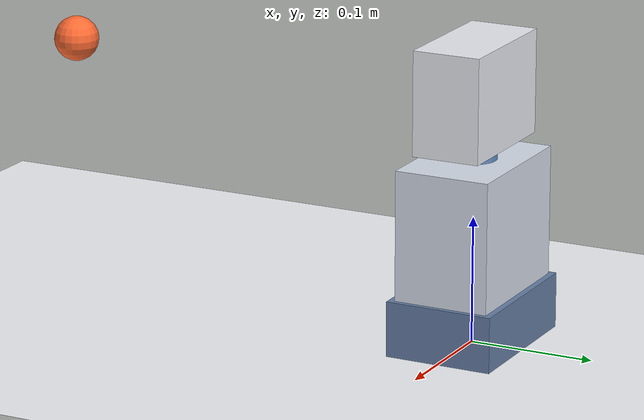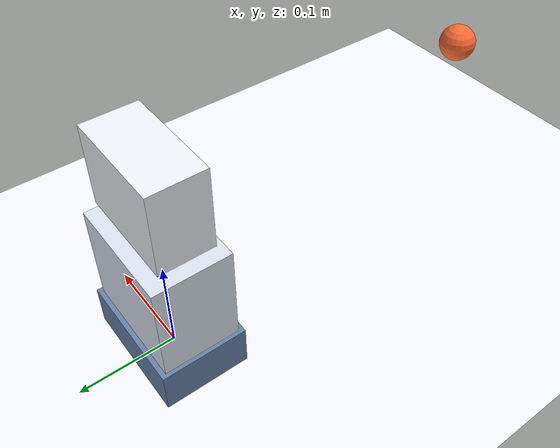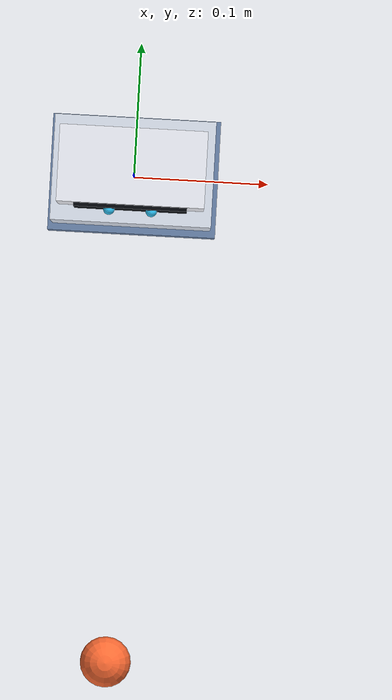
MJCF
<mujoco model="deskro_v1_training">
  <compiler angle="degree" autolimits="true"/>
  <option timestep="0.005" gravity="0 0 -9.81" integrator="implicitfast"/>

  <default>
    <joint damping="0.18" armature="0.003" frictionloss="0.003"/>
    <geom density="550" friction="0.8 0.1 0.1"/>
  </default>

  <worldbody>
    <geom name="floor" type="plane" size="2 2 0.05"
          rgba="0.95 0.96 0.98 1"/>

    <body name="target_marker" mocap="true" pos="0 -0.35 0.20">
      <geom name="target_geom" type="sphere" size="0.018"
            rgba="1 0.42 0.20 0.92" contype="0" conaffinity="0"/>
    </body>

    <body name="base" pos="0 0 0.022">
      <geom name="base_geom" type="box" size="0.062 0.043 0.022"
            rgba="0.4 0.5 0.65 1"/>

      <body name="torso" pos="0 0 0.070">
        <geom name="torso_geom" type="box" size="0.058 0.038 0.055"
              rgba="0.85 0.88 0.93 1"/>

        <body name="neck_yaw" pos="0 0 0.056">
          <joint name="joint_head_yaw" type="hinge"
                 axis="0 0 1" range="-60 60"
                 damping="0.12" armature="0.002" frictionloss="0.004"/>
          <geom name="yaw_servo" type="cylinder" size="0.018 0.008"
                rgba="0.4 0.55 0.75 1"
                contype="0" conaffinity="0" mass="0.000001"/>

          <body name="neck_pitch" pos="0 0 0.006">
            <joint name="joint_head_pitch" type="hinge"
                   axis="-1 0 0" range="-25 25"
                   damping="0.16" armature="0.003" frictionloss="0.006"/>
            <geom name="pitch_servo" type="cylinder" euler="0 90 0"
                  size="0.016 0.008" rgba="0.4 0.55 0.75 1"
                  contype="0" conaffinity="0" mass="0.000001"/>

            <body name="head" pos="0 0 0.045" gravcomp="1">
              <inertial pos="0 0 0" mass="0.090"
                        diaginertia="0.0000723 0.0001316 0.0001030"/>
              <geom name="head_shell" type="box" size="0.052 0.027 0.041"
                    rgba="0.93 0.94 0.97 1"
                    contype="0" conaffinity="0" mass="0.000001"/>

              <geom name="oled_panel" type="box"
                    pos="0 -0.028 0" size="0.040 0.0015 0.027"
                    rgba="0.01 0.02 0.04 1"
                    contype="0" conaffinity="0" mass="0.000001"/>
              <geom name="left_eye" type="sphere"
                    pos="-0.015 -0.030 0.006" size="0.004"
                    rgba="0.2 0.8 1 1"
                    contype="0" conaffinity="0" mass="0.000001"/>
              <geom name="right_eye" type="sphere"
                    pos="0.015 -0.030 0.006" size="0.004"
                    rgba="0.2 0.8 1 1"
                    contype="0" conaffinity="0" mass="0.000001"/>
            </body>
          </body>
        </body>
      </body>
    </body>
  </worldbody>

  <actuator>
    <position name="act_head_yaw" joint="joint_head_yaw"
              kp="28"
              ctrllimited="true"
              ctrlrange="-1.0471975512 1.0471975512"
              forcelimited="true" forcerange="-0.35 0.35"/>
    <position name="act_head_pitch" joint="joint_head_pitch"
              kp="32"
              ctrllimited="true"
              ctrlrange="-0.4363323130 0.4363323130"
              forcelimited="true" forcerange="-0.35 0.35"/>
  </actuator>

  <sensor>
    <jointpos name="head_yaw_pos" joint="joint_head_yaw"/>
    <jointpos name="head_pitch_pos" joint="joint_head_pitch"/>
    <jointvel name="head_yaw_vel" joint="joint_head_yaw"/>
    <jointvel name="head_pitch_vel" joint="joint_head_pitch"/>
  </sensor>
</mujoco>
